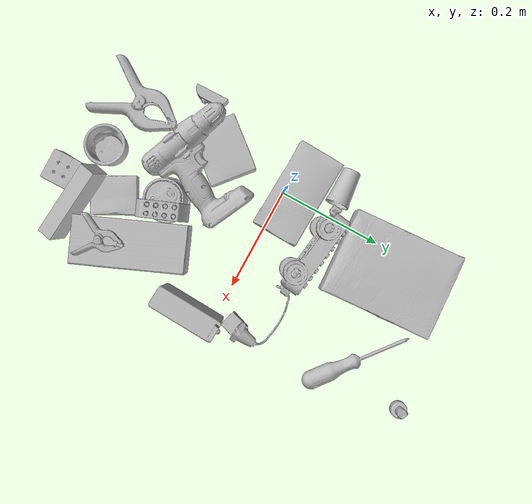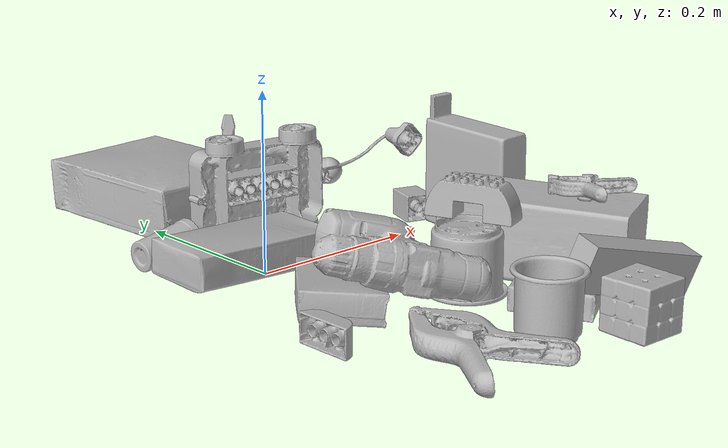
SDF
<sdf version="1.4">
  <world name="default">
    <light name="light1" type="point">
      <pose>0 0 1 0 0 0</pose>
      <diffuse>3 3 3 1</diffuse>
      <specular>3 3 3 1</specular>
    </light>
    <light name="light2" type="point">
      <pose>0 0.5 2 0 0 0</pose>
      <diffuse>1 1 1 1</diffuse>
      <specular>1 1 1 1</specular>
    </light>
    <light name="light3" type="point">
      <pose>0 0.5 2 0 0 0</pose>
      <diffuse>3 3 3 1</diffuse>
      <specular>3 3 3 1</specular>
    </light>
    <scene>
      <ambient>0.7 0.7 0.7</ambient>
    </scene>
    <model name="box21">
      <link name="link_box21">
        <collision name="default">
          <geometry>
            <mesh>
              <uri>model://cracker_box/collision_meshes/collision.obj</uri>
              <scale>1.0 1.0 1.0</scale>
            </mesh>
          </geometry>
          <surface>
            <friction>
              <ode>
                <mu>0.5</mu>
                <mu2>0.5</mu2>
              </ode>
            </friction>
          <contact>
        <ode>
            <max_vel>0</max_vel>
            <min_depth>0.0001</min_depth>
            <kp>1e8</kp>
        </ode>
    </contact></surface>
        </collision>
        <visual name="default">
          <geometry>
            <mesh>
              <uri>model://cracker_box/visual_meshes/visual.dae</uri>
              <scale>1.0 1.0 1.0</scale>
            </mesh>
          </geometry>
        </visual>
        <inertial>
          <mass>2.590176582336426</mass>
          <pose>0.0009464152390137315 0.00025434247800149024 -0.0017029535956680775 -0.0003162072774594163 -0.011106486806667554 0.0025467954652388498</pose>
          <inertia>
            <ixx>0.0065882523</ixx>
            <iyy>0.0108785</iyy>
            <izz>0.015524619</izz>
            <ixy>0</ixy>
            <ixz>0</ixz>
            <iyz>0</iyz>
          </inertia>
        </inertial>
      </link>
      <pose>0.03860855847597122 0.2423534244298935 0.03553137928247452 3.1372011310758863 -0.01654375905499788 -1.5035591841935112</pose>
    </model>
    <model name="box22">
      <link name="link_box22">
        <collision name="default">
          <geometry>
            <mesh>
              <uri>model://gelatin_box/collision_meshes/collision.obj</uri>
              <scale>1.0 1.0 1.0</scale>
            </mesh>
          </geometry>
          <surface>
            <friction>
              <ode>
                <mu>0.5</mu>
                <mu2>0.5</mu2>
              </ode>
            </friction>
          <contact>
        <ode>
            <max_vel>0</max_vel>
            <min_depth>0.0001</min_depth>
            <kp>1e8</kp>
        </ode>
    </contact></surface>
        </collision>
        <visual name="default">
          <geometry>
            <mesh>
              <uri>model://gelatin_box/visual_meshes/visual.dae</uri>
              <scale>1.0 1.0 1.0</scale>
            </mesh>
          </geometry>
        </visual>
        <inertial>
          <mass>0.25047940015792847</mass>
          <pose>0.0004319618456065655 0.00011156871914863586 -0.0003640321083366871 -0.0010503719848663328 -0.004755819155031653 0.016440561334722496</pose>
          <inertia>
            <ixx>0.00017681804</ixx>
            <iyy>0.00012630019</iyy>
            <izz>0.0002691564</izz>
            <ixy>0</ixy>
            <ixz>0</ixz>
            <iyz>0</iyz>
          </inertia>
        </inertial>
      </link>
      <pose>0.15615694224834442 -0.27221250534057617 0.015168240293860435 0.005590375645658757 -0.00729751238862143 0.4883727954685043</pose>
    </model>
    <model name="box23">
      <link name="link_box23">
        <collision name="default">
          <geometry>
            <mesh>
              <uri>model://pudding_box/collision_meshes/collision.obj</uri>
              <scale>1.0 1.0 1.0</scale>
            </mesh>
          </geometry>
          <surface>
            <friction>
              <ode>
                <mu>0.5</mu>
                <mu2>0.5</mu2>
              </ode>
            </friction>
          <contact>
        <ode>
            <max_vel>0</max_vel>
            <min_depth>0.0001</min_depth>
            <kp>1e8</kp>
        </ode>
    </contact></surface>
        </collision>
        <visual name="default">
          <geometry>
            <mesh>
              <uri>model://pudding_box/visual_meshes/visual.dae</uri>
              <scale>1.0 1.0 1.0</scale>
            </mesh>
          </geometry>
        </visual>
        <inertial>
          <mass>0.39469316601753235</mass>
          <pose>0.0004894821904599667 0.000806788622867316 -0.0005188827635720372 0.005213100892100292 -0.006603796836808699 0.020079821441474487</pose>
          <inertia>
            <ixx>0.00044618026</ixx>
            <iyy>0.00030019323</iyy>
            <izz>0.00065890176</izz>
            <ixy>0</ixy>
            <ixz>0</ixz>
            <iyz>0</iyz>
          </inertia>
        </inertial>
      </link>
      <pose>-0.013125092722475529 -0.13385224342346191 0.020683879032731056 0.006181871224984348 -0.05507823568442025 2.441069717935018</pose>
    </model>
    <model name="cup1">
      <link name="link_cup1">
        <collision name="default">
          <geometry>
            <mesh>
              <uri>model://cup_small/collision_meshes/collision.obj</uri>
              <scale>1.0 1.0 1.0</scale>
            </mesh>
          </geometry>
          <surface>
            <friction>
              <ode>
                <mu>0.5</mu>
                <mu2>0.5</mu2>
              </ode>
            </friction>
          <contact>
        <ode>
            <max_vel>0</max_vel>
            <min_depth>0.0001</min_depth>
            <kp>1e8</kp>
        </ode>
    </contact></surface>
        </collision>
        <visual name="default">
          <geometry>
            <mesh>
              <uri>model://cup_small/visual_meshes/visual.dae</uri>
              <scale>1.0 1.0 1.0</scale>
            </mesh>
          </geometry>
        </visual>
        <inertial>
          <mass>0.021035347133874893</mass>
          <pose>0.0001048244594130665 -0.0003377834218554199 -0.010742821730673313 -0.011493211249102088 -0.015280240526329824 -0.5058153233609384</pose>
          <inertia>
            <ixx>1.2385285e-05</ixx>
            <iyy>1.2449176e-05</iyy>
            <izz>5.591994e-06</izz>
            <ixy>0</ixy>
            <ixz>0</ixz>
            <iyz>0</iyz>
          </inertia>
        </inertial>
      </link>
      <pose>-0.06073566526174545 0.09536667913198471 0.020039152354002 -0.9941372939830684 -1.4320137256098064 -2.082125089212246</pose>
    </model>
    <model name="cup2">
      <link name="link_cup2">
        <collision name="default">
          <geometry>
            <mesh>
              <uri>model://e_cups/collision_meshes/collision.obj</uri>
              <scale>1.0 1.0 1.0</scale>
            </mesh>
          </geometry>
          <surface>
            <friction>
              <ode>
                <mu>0.5</mu>
                <mu2>0.5</mu2>
              </ode>
            </friction>
          <contact>
        <ode>
            <max_vel>0</max_vel>
            <min_depth>0.0001</min_depth>
            <kp>1e8</kp>
        </ode>
    </contact></surface>
        </collision>
        <visual name="default">
          <geometry>
            <mesh>
              <uri>model://e_cups/visual_meshes/visual.dae</uri>
              <scale>1.0 1.0 1.0</scale>
            </mesh>
          </geometry>
        </visual>
        <inertial>
          <mass>0.053841520100831985</mass>
          <pose>0.0011355747701600194 0.0028797851409763098 -0.0038829720579087734 0.69523823542345 0.08767615215021585 -0.5235238319868403</pose>
          <inertia>
            <ixx>4.7474743e-05</ixx>
            <iyy>4.9617902e-05</iyy>
            <izz>4.5391338e-05</izz>
            <ixy>0</ixy>
            <ixz>0</ixz>
            <iyz>0</iyz>
          </inertia>
        </inertial>
      </link>
      <pose>0.08266610652208328 -0.32094261050224304 0.03560017794370651 -1.2241089867694705e-05 7.080335201126588e-06 2.2773994233639505</pose>
    </model>
    <model name="box11">
      <link name="link_box11">
        <collision name="default">
          <geometry>
            <mesh>
              <uri>model://jenga/collision_meshes/collision.obj</uri>
              <scale>1.0 1.0 1.0</scale>
            </mesh>
          </geometry>
          <surface>
            <friction>
              <ode>
                <mu>0.5</mu>
                <mu2>0.5</mu2>
              </ode>
            </friction>
          <contact>
        <ode>
            <max_vel>0</max_vel>
            <min_depth>0.0001</min_depth>
            <kp>1e8</kp>
        </ode>
    </contact></surface>
        </collision>
        <visual name="default">
          <geometry>
            <mesh>
              <uri>model://jenga/visual_meshes/visual.dae</uri>
              <scale>1.0 1.0 1.0</scale>
            </mesh>
          </geometry>
        </visual>
        <inertial>
          <mass>0.26362571120262146</mass>
          <pose>-2.502855807051674e-07 -0.00010250010382151231 -4.0923401684267446e-05 0.0 -7.342155186052628e-07 0.0</pose>
          <inertia>
            <ixx>7.295163e-05</ixx>
            <iyy>0.0004943182</iyy>
            <izz>0.0005277267</izz>
            <ixy>0</ixy>
            <ixz>0</ixz>
            <iyz>0</iyz>
          </inertia>
        </inertial>
      </link>
      <pose>0.2017868012189865 -0.3276894986629486 0.044469453394412994 1.7842639646548224 0.2498179212913578 -0.1399832910388478</pose>
    </model>
    <model name="box12">
      <link name="link_box12">
        <collision name="default">
          <geometry>
            <mesh>
              <uri>model://rubiks_cube/collision_meshes/collision.obj</uri>
              <scale>1.0 1.0 1.0</scale>
            </mesh>
          </geometry>
          <surface>
            <friction>
              <ode>
                <mu>0.5</mu>
                <mu2>0.5</mu2>
              </ode>
            </friction>
          <contact>
        <ode>
            <max_vel>0</max_vel>
            <min_depth>0.0001</min_depth>
            <kp>1e8</kp>
        </ode>
    </contact></surface>
        </collision>
        <visual name="default">
          <geometry>
            <mesh>
              <uri>model://rubiks_cube/visual_meshes/visual.dae</uri>
              <scale>1.0 1.0 1.0</scale>
            </mesh>
          </geometry>
        </visual>
        <inertial>
          <mass>0.2476155012845993</mass>
          <pose>2.6721041649580002e-05 5.256966323941015e-05 -7.2643156272533815e-06 -0.05467269607811095 -0.09813983501015876 -0.034455733913541106</pose>
          <inertia>
            <ixx>0.00013682418</ixx>
            <iyy>0.0001361861</iyy>
            <izz>0.00013795799</izz>
            <ixy>0</ixy>
            <ixz>0</ixz>
            <iyz>0</iyz>
          </inertia>
        </inertial>
      </link>
      <pose>0.15986835956573486 -0.3714852035045624 0.028679532930254936 4.064867601918014e-05 2.806664783362136e-05 -1.5766378851783929</pose>
    </model>
    <model name="box13">
      <link name="link_box13">
        <collision name="default">
          <geometry>
            <mesh>
              <uri>model://sugar_box/collision_meshes/collision.obj</uri>
              <scale>1.0 1.0 1.0</scale>
            </mesh>
          </geometry>
          <surface>
            <friction>
              <ode>
                <mu>0.5</mu>
                <mu2>0.5</mu2>
              </ode>
            </friction>
          <contact>
        <ode>
            <max_vel>0</max_vel>
            <min_depth>0.0001</min_depth>
            <kp>1e8</kp>
        </ode>
    </contact></surface>
        </collision>
        <visual name="default">
          <geometry>
            <mesh>
              <uri>model://sugar_box/visual_meshes/visual.dae</uri>
              <scale>1.0 1.0 1.0</scale>
            </mesh>
          </geometry>
        </visual>
        <inertial>
          <mass>0.6861893534660339</mass>
          <pose>0.0010343727190047503 3.849109634757042e-05 -0.0003636480250861496 -0.00040462627129080113 0.001050663522124822 0.0026153787889376494</pose>
          <inertia>
            <ixx>0.0005717311</ixx>
            <iyy>0.0018479523</iyy>
            <izz>0.0022122194</izz>
            <ixy>0</ixy>
            <ixz>0</ixz>
            <iyz>0</iyz>
          </inertia>
        </inertial>
      </link>
      <pose>-0.009133576415479183 0.025223059579730034 0.022798597812652588 0.0007756412784910659 -0.023433355198768296 3.0967568901290634</pose>
    </model>
    <model name="box14">
      <link name="link_box14">
        <collision name="default">
          <geometry>
            <mesh>
              <uri>model://wood_block/collision_meshes/collision.obj</uri>
              <scale>1.0 1.0 1.0</scale>
            </mesh>
          </geometry>
          <surface>
            <friction>
              <ode>
                <mu>0.5</mu>
                <mu2>0.5</mu2>
              </ode>
            </friction>
          <contact>
        <ode>
            <max_vel>0</max_vel>
            <min_depth>0.0001</min_depth>
            <kp>1e8</kp>
        </ode>
    </contact></surface>
        </collision>
        <visual name="default">
          <geometry>
            <mesh>
              <uri>model://wood_block/visual_meshes/visual.dae</uri>
              <scale>1.0 1.0 1.0</scale>
            </mesh>
          </geometry>
        </visual>
        <inertial>
          <mass>2.2081377506256104</mass>
          <pose>-5.813315965497168e-06 -0.000570809468626976 0.00026408585836179554 -0.052206634003801496 -0.0051926960857359 -0.00686137798931887</pose>
          <inertia>
            <ixx>0.0029548227</ixx>
            <iyy>0.009334286</iyy>
            <izz>0.0092993695</izz>
            <ixy>0</ixy>
            <ixz>0</ixz>
            <iyz>0</iyz>
          </inertia>
        </inertial>
      </link>
      <pose>0.2176942229270935 -0.19600363075733185 0.04570063203573227 1.5681347389385611 -0.006939542798032213 1.9769160235150889</pose>
    </model>
    <model name="cup15">
      <link name="link_cup15">
        <collision name="default">
          <geometry>
            <mesh>
              <uri>model://g_cups/collision_meshes/collision.obj</uri>
              <scale>1.0 1.0 1.0</scale>
            </mesh>
          </geometry>
          <surface>
            <friction>
              <ode>
                <mu>0.5</mu>
                <mu2>0.5</mu2>
              </ode>
            </friction>
          <contact>
        <ode>
            <max_vel>0</max_vel>
            <min_depth>0.0001</min_depth>
            <kp>1e8</kp>
        </ode>
    </contact></surface>
        </collision>
        <visual name="default">
          <geometry>
            <mesh>
              <uri>model://g_cups/visual_meshes/visual.dae</uri>
              <scale>1.0 1.0 1.0</scale>
            </mesh>
          </geometry>
        </visual>
        <inertial>
          <mass>0.09534990042448044</mass>
          <pose>-0.000794626830611378 -4.206429366604425e-05 -0.002132937079295516 -0.21382187015428292 -0.3141046168173621 0.3112040328096479</pose>
          <inertia>
            <ixx>0.00011129469</ixx>
            <iyy>0.0001109161</iyy>
            <izz>0.00011528214</izz>
            <ixy>0</ixy>
            <ixz>0</ixz>
            <iyz>0</iyz>
          </inertia>
        </inertial>
      </link>
      <pose>0.11661702394485474 -0.18356314301490784 0.037119828164577484 3.141507482957575 -5.867398431405811e-05 -1.9536275693410035</pose>
    </model>
    <model name="toy1">
      <link name="link_toy1">
        <collision name="default">
          <geometry>
            <mesh>
              <uri>model://a_lego_duplo/collision_meshes/collision.obj</uri>
              <scale>1.0 1.0 1.0</scale>
            </mesh>
          </geometry>
          <surface>
            <friction>
              <ode>
                <mu>0.5</mu>
                <mu2>0.5</mu2>
              </ode>
            </friction>
          <contact>
        <ode>
            <max_vel>0</max_vel>
            <min_depth>0.0001</min_depth>
            <kp>1e8</kp>
        </ode>
    </contact></surface>
        </collision>
        <visual name="default">
          <geometry>
            <mesh>
              <uri>model://a_lego_duplo/visual_meshes/visual.dae</uri>
              <scale>1.0 1.0 1.0</scale>
            </mesh>
          </geometry>
        </visual>
        <inertial>
          <mass>0.019288161769509315</mass>
          <pose>-0.00011337728938087821 0.00018517542048357427 0.00036926069878973067 -0.014116980162122142 -0.00012566491180396528 6.141847735431564e-05</pose>
          <inertia>
            <ixx>2.4728956e-06</ixx>
            <iyy>5.539828e-06</iyy>
            <izz>6.86231e-06</izz>
            <ixy>0</ixy>
            <ixz>0</ixz>
            <iyz>0</iyz>
          </inertia>
        </inertial>
      </link>
      <pose>-0.08722859621047974 -0.20239780843257904 0.016109004616737366 1.5707975112831245 4.0509760535963954e-07 1.5921851943803265</pose>
    </model>
    <model name="toy2">
      <link name="link_toy2">
        <collision name="default">
          <geometry>
            <mesh>
              <uri>model://nine_hole_peg_test/collision_meshes/collision.obj</uri>
              <scale>1.0 1.0 1.0</scale>
            </mesh>
          </geometry>
          <surface>
            <friction>
              <ode>
                <mu>0.5</mu>
                <mu2>0.5</mu2>
              </ode>
            </friction>
          <contact>
        <ode>
            <max_vel>0</max_vel>
            <min_depth>0.0001</min_depth>
            <kp>1e8</kp>
        </ode>
    </contact></surface>
        </collision>
        <visual name="default">
          <geometry>
            <mesh>
              <uri>model://nine_hole_peg_test/visual_meshes/visual.dae</uri>
              <scale>1.0 1.0 1.0</scale>
            </mesh>
          </geometry>
        </visual>
        <inertial>
          <mass>0.4416040778160095</mass>
          <pose>-0.004617387894541025 -0.009647616185247898 2.646069333422929e-05 -0.001466680632441769 0.0007194151669294288 -0.6342433000636255</pose>
          <inertia>
            <ixx>0.00069052057</ixx>
            <iyy>0.0006447319</iyy>
            <izz>0.0012099957</izz>
            <ixy>0</ixy>
            <ixz>0</ixz>
            <iyz>0</iyz>
          </inertia>
        </inertial>
      </link>
      <pose>0.27362877130508423 -0.042952410876750946 0.07397214323282242 1.5550012276072707 -0.009794614312584571 1.5255788822247522</pose>
    </model>
    <model name="toy3">
      <link name="link_toy3">
        <collision name="default">
          <geometry>
            <mesh>
              <uri>model://b_lego_duplo/collision_meshes/collision.obj</uri>
              <scale>1.0 1.0 1.0</scale>
            </mesh>
          </geometry>
          <surface>
            <friction>
              <ode>
                <mu>0.5</mu>
                <mu2>0.5</mu2>
              </ode>
            </friction>
          <contact>
        <ode>
            <max_vel>0</max_vel>
            <min_depth>0.0001</min_depth>
            <kp>1e8</kp>
        </ode>
    </contact></surface>
        </collision>
        <visual name="default">
          <geometry>
            <mesh>
              <uri>model://b_lego_duplo/visual_meshes/visual.dae</uri>
              <scale>1.0 1.0 1.0</scale>
            </mesh>
          </geometry>
        </visual>
        <inertial>
          <mass>0.05141952633857727</mass>
          <pose>-0.00011053046182496473 -9.15286273084348e-06 0.0019294298253953457 -0.03749504579203769 -0.026353926476799443 0.45190277296460496</pose>
          <inertia>
            <ixx>1.0523392e-05</ixx>
            <iyy>1.0594135e-05</iyy>
            <izz>9.376003e-06</izz>
            <ixy>0</ixy>
            <ixz>0</ixz>
            <iyz>0</iyz>
          </inertia>
        </inertial>
      </link>
      <pose>0.2608620822429657 0.041450705379247665 0.01618052087724209 0.04243443329690174 -1.56239665703655 -1.925909261966282</pose>
    </model>
    <model name="toy4">
      <link name="link_toy4">
        <collision name="default">
          <geometry>
            <mesh>
              <uri>model://e_lego_duplo/collision_meshes/collision.obj</uri>
              <scale>1.0 1.0 1.0</scale>
            </mesh>
          </geometry>
          <surface>
            <friction>
              <ode>
                <mu>0.5</mu>
                <mu2>0.5</mu2>
              </ode>
            </friction>
          <contact>
        <ode>
            <max_vel>0</max_vel>
            <min_depth>0.0001</min_depth>
            <kp>1e8</kp>
        </ode>
    </contact></surface>
        </collision>
        <visual name="default">
          <geometry>
            <mesh>
              <uri>model://e_lego_duplo/visual_meshes/visual.dae</uri>
              <scale>1.0 1.0 1.0</scale>
            </mesh>
          </geometry>
        </visual>
        <inertial>
          <mass>0.10851083695888519</mass>
          <pose>0.0003256036143284291 0.00023485413112211972 0.0019521439680829644 -0.022567807713092337 -6.825385155411165e-05 -0.007625153430497312</pose>
          <inertia>
            <ixx>2.2628092e-05</ixx>
            <iyy>9.28715e-05</iyy>
            <izz>9.0438196e-05</izz>
            <ixy>0</ixy>
            <ixz>0</ixz>
            <iyz>0</iyz>
          </inertia>
        </inertial>
      </link>
      <pose>0.13640400767326355 -0.1725004017353058 0.09596060961484909 0.04474430800383887 0.0009811262446958143 1.9565363011010146</pose>
    </model>
    <model name="toy5">
      <link name="link_toy5">
        <collision name="default">
          <geometry>
            <mesh>
              <uri>model://e_toy_airplane/collision_meshes/collision.obj</uri>
              <scale>1.0 1.0 1.0</scale>
            </mesh>
          </geometry>
          <surface>
            <friction>
              <ode>
                <mu>0.5</mu>
                <mu2>0.5</mu2>
              </ode>
            </friction>
          <contact>
        <ode>
            <max_vel>0</max_vel>
            <min_depth>0.0001</min_depth>
            <kp>1e8</kp>
        </ode>
    </contact></surface>
        </collision>
        <visual name="default">
          <geometry>
            <mesh>
              <uri>model://e_toy_airplane/visual_meshes/visual.dae</uri>
              <scale>1.0 1.0 1.0</scale>
            </mesh>
          </geometry>
        </visual>
        <inertial>
          <mass>0.028576364740729332</mass>
          <pose>0.00011740469926735386 -2.248284363304265e-05 -0.011187203228473663 0.005518470588584354 0.009228302056362008 0.15041344019646216</pose>
          <inertia>
            <ixx>8.721834e-06</ixx>
            <iyy>8.6326145e-06</iyy>
            <izz>2.6212538e-06</izz>
            <ixy>0</ixy>
            <ixz>0</ixz>
            <iyz>0</iyz>
          </inertia>
        </inertial>
      </link>
      <pose>0.25224265456199646 0.3830659091472626 0.03321224823594093 6.0803774163452786e-05 -0.00016155073342797148 0.9181656543339831</pose>
    </model>
    <model name="toy6">
      <link name="link_toy6">
        <collision name="default">
          <geometry>
            <mesh>
              <uri>model://g_lego_duplo/collision_meshes/collision.obj</uri>
              <scale>1.0 1.0 1.0</scale>
            </mesh>
          </geometry>
          <surface>
            <friction>
              <ode>
                <mu>0.5</mu>
                <mu2>0.5</mu2>
              </ode>
            </friction>
          <contact>
        <ode>
            <max_vel>0</max_vel>
            <min_depth>0.0001</min_depth>
            <kp>1e8</kp>
        </ode>
    </contact></surface>
        </collision>
        <visual name="default">
          <geometry>
            <mesh>
              <uri>model://g_lego_duplo/visual_meshes/visual.dae</uri>
              <scale>1.0 1.0 1.0</scale>
            </mesh>
          </geometry>
        </visual>
        <inertial>
          <mass>0.2849176824092865</mass>
          <pose>-0.050047703087329865 0.0017554622609168291 0.0038806754164397717 0.010963023424049216 0.03810828912622395 -0.09653028734865207</pose>
          <inertia>
            <ixx>0.000412849</ixx>
            <iyy>0.0012481753</iyy>
            <izz>0.0015615128</izz>
            <ixy>0</ixy>
            <ixz>0</ixz>
            <iyz>0</iyz>
          </inertia>
        </inertial>
      </link>
      <pose>0.1319403499364853 0.08868125081062317 0.06712814420461655 -1.6019348585395619 -1.6688912377608773e-05 -0.13707100313197823</pose>
    </model>
    <model name="hardware1">
      <link name="link_hardware1">
        <collision name="default">
          <geometry>
            <mesh>
              <uri>model://large_clamp/collision_meshes/collision.obj</uri>
              <scale>1.0 1.0 1.0</scale>
            </mesh>
          </geometry>
          <surface>
            <friction>
              <ode>
                <mu>0.5</mu>
                <mu2>0.5</mu2>
              </ode>
            </friction>
          <contact>
        <ode>
            <max_vel>0</max_vel>
            <min_depth>0.0001</min_depth>
            <kp>1e8</kp>
        </ode>
    </contact></surface>
        </collision>
        <visual name="default">
          <geometry>
            <mesh>
              <uri>model://large_clamp/visual_meshes/visual.dae</uri>
              <scale>1.0 1.0 1.0</scale>
            </mesh>
          </geometry>
        </visual>
        <inertial>
          <mass>0.15191641449928284</mass>
          <pose>0.006369356997311115 0.00035856704926118255 -0.00018398075189907104 -0.0021330805905738653 0.00967158570552682 0.02663313568730603</pose>
          <inertia>
            <ixx>0.00013403181</ixx>
            <iyy>0.0002545337</iyy>
            <izz>0.00036821538</izz>
            <ixy>0</ixy>
            <ixz>0</ixz>
            <iyz>0</iyz>
          </inertia>
        </inertial>
      </link>
      <pose>-0.015131660737097263 -0.31380462646484375 0.01807781681418419 3.1227834734794793 0.020071328205758847 1.528908834151285</pose>
    </model>
    <model name="hardware2">
      <link name="link_hardware2">
        <collision name="default">
          <geometry>
            <mesh>
              <uri>model://phillips_screwdriver/collision_meshes/collision.obj</uri>
              <scale>1.0 1.0 1.0</scale>
            </mesh>
          </geometry>
          <surface>
            <friction>
              <ode>
                <mu>0.5</mu>
                <mu2>0.5</mu2>
              </ode>
            </friction>
          <contact>
        <ode>
            <max_vel>0</max_vel>
            <min_depth>0.0001</min_depth>
            <kp>1e8</kp>
        </ode>
    </contact></surface>
        </collision>
        <visual name="default">
          <geometry>
            <mesh>
              <uri>model://phillips_screwdriver/visual_meshes/visual.dae</uri>
              <scale>1.0 1.0 1.0</scale>
            </mesh>
          </geometry>
        </visual>
        <inertial>
          <mass>0.09855502843856812</mass>
          <pose>-0.04777182266116142 0.001036230125464499 -0.00045555492397397757 -0.15717104537538515 0.005850995063257979 -0.0021567379341223374</pose>
          <inertia>
            <ixx>1.15792045e-05</ixx>
            <iyy>0.00014518296</iyy>
            <izz>0.00014530632</izz>
            <ixy>0</ixy>
            <ixz>0</ixz>
            <iyz>0</iyz>
          </inertia>
        </inertial>
      </link>
      <pose>0.2121620923280716 0.26705166697502136 0.014003461226820946 2.4998022976071725 0.03680936115583742 2.456492467960253</pose>
    </model>
    <model name="hardware3">
      <link name="link_hardware3">
        <collision name="default">
          <geometry>
            <mesh>
              <uri>model://power_drill/collision_meshes/collision.obj</uri>
              <scale>1.0 1.0 1.0</scale>
            </mesh>
          </geometry>
          <surface>
            <friction>
              <ode>
                <mu>0.5</mu>
                <mu2>0.5</mu2>
              </ode>
            </friction>
          <contact>
        <ode>
            <max_vel>0</max_vel>
            <min_depth>0.0001</min_depth>
            <kp>1e8</kp>
        </ode>
    </contact></surface>
        </collision>
        <visual name="default">
          <geometry>
            <mesh>
              <uri>model://power_drill/visual_meshes/visual.dae</uri>
              <scale>1.0 1.0 1.0</scale>
            </mesh>
          </geometry>
        </visual>
        <inertial>
          <mass>0.8579708337783813</mass>
          <pose>-0.01478054840117693 0.01436943281441927 0.0012414173688739538 0.004609163561922946 0.004073017669368797 -0.18362705043487879</pose>
          <inertia>
            <ixx>0.0034962718</ixx>
            <iyy>0.0013756006</iyy>
            <izz>0.0046174442</izz>
            <ixy>0</ixy>
            <ixz>0</ixz>
            <iyz>0</iyz>
          </inertia>
        </inertial>
      </link>
      <pose>0.02985455095767975 -0.1416584849357605 0.05145123973488808 0.10926384545908224 -0.271448474484209 2.703972063467307</pose>
    </model>
    <model name="hardware4">
      <link name="link_hardware4">
        <collision name="default">
          <geometry>
            <mesh>
              <uri>model://medium_clamp/collision_meshes/collision.obj</uri>
              <scale>1.0 1.0 1.0</scale>
            </mesh>
          </geometry>
          <surface>
            <friction>
              <ode>
                <mu>0.5</mu>
                <mu2>0.5</mu2>
              </ode>
            </friction>
          <contact>
        <ode>
            <max_vel>0</max_vel>
            <min_depth>0.0001</min_depth>
            <kp>1e8</kp>
        </ode>
    </contact></surface>
        </collision>
        <visual name="default">
          <geometry>
            <mesh>
              <uri>model://medium_clamp/visual_meshes/visual.dae</uri>
              <scale>1.0 1.0 1.0</scale>
            </mesh>
          </geometry>
        </visual>
        <inertial>
          <mass>0.019661318510770798</mass>
          <pose>0.005390993319451809 0.0003953249251935631 -0.00012221586075611413 -0.0012269159857183107 0.002584502991641296 0.038207758549707246</pose>
          <inertia>
            <ixx>5.356451e-06</ixx>
            <iyy>7.795151e-06</iyy>
            <izz>1.2006867e-05</izz>
            <ixy>0</ixy>
            <ixz>0</ixz>
            <iyz>0</iyz>
          </inertia>
        </inertial>
      </link>
      <pose>0.23268501460552216 -0.24413403868675232 0.1031540185213089 0.06515600739007239 0.0813209214551705 1.7901162869941634</pose>
    </model>
  <physics type="ode">
      <max_contacts>50</max_contacts>
      <ode>
        <solver>
          <type>quick</type>
          <iters>75</iters>
        </solver>
        <constraints>
          <contact_max_correcting_vel>0</contact_max_correcting_vel>
          <contact_surface_layer>0</contact_surface_layer>
        </constraints>
      </ode>
    </physics></world>
</sdf>
